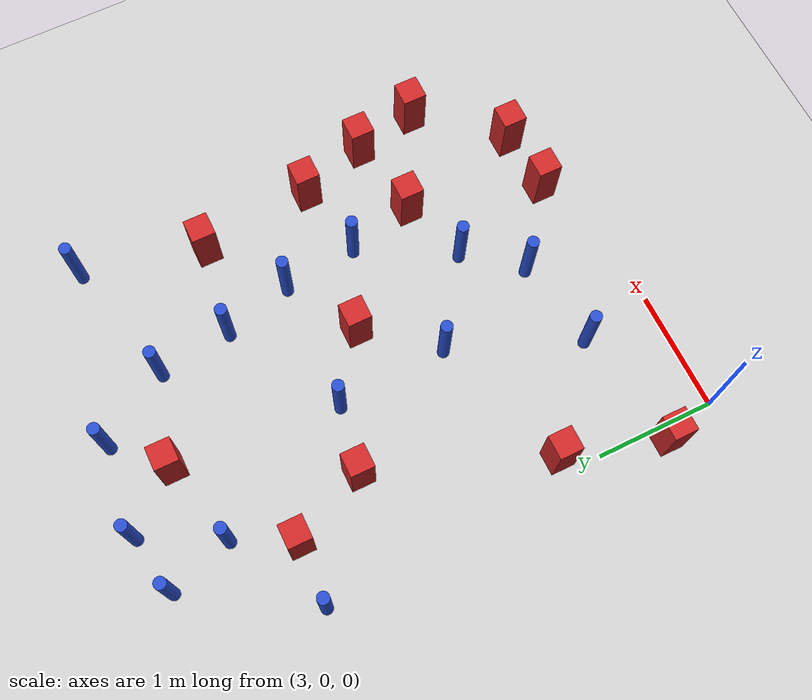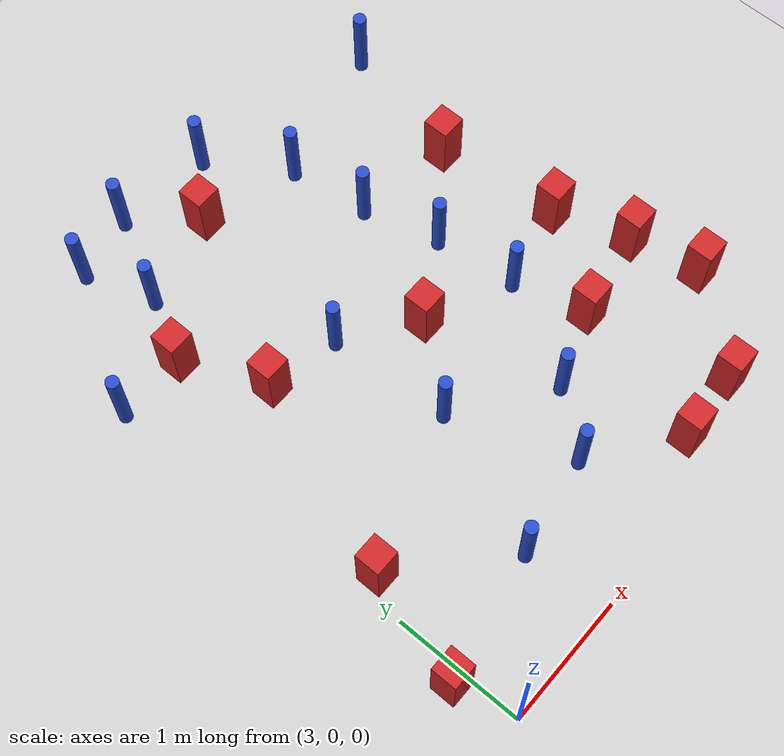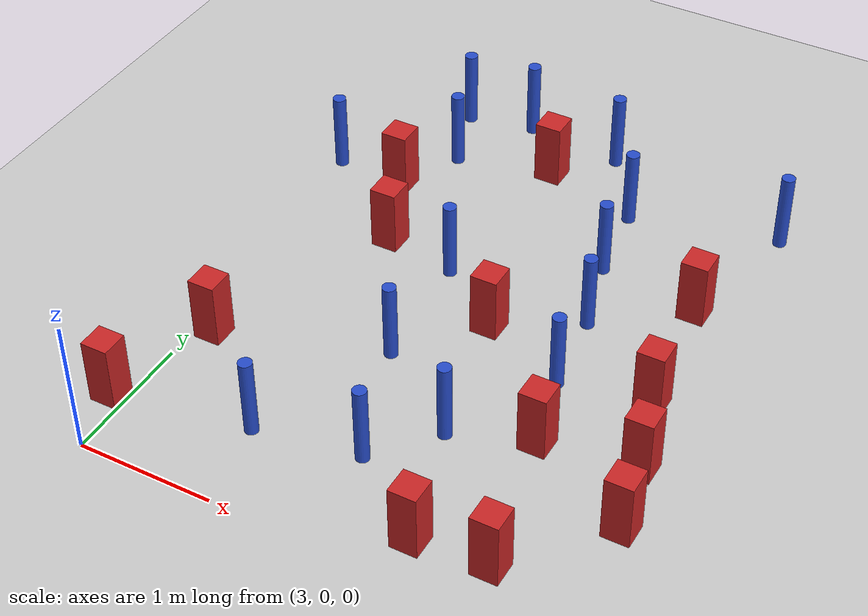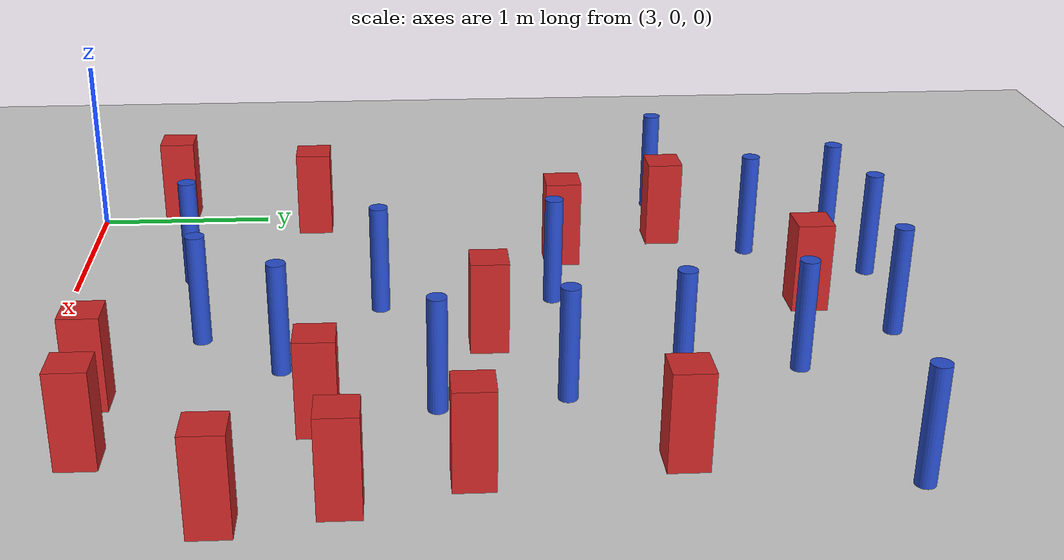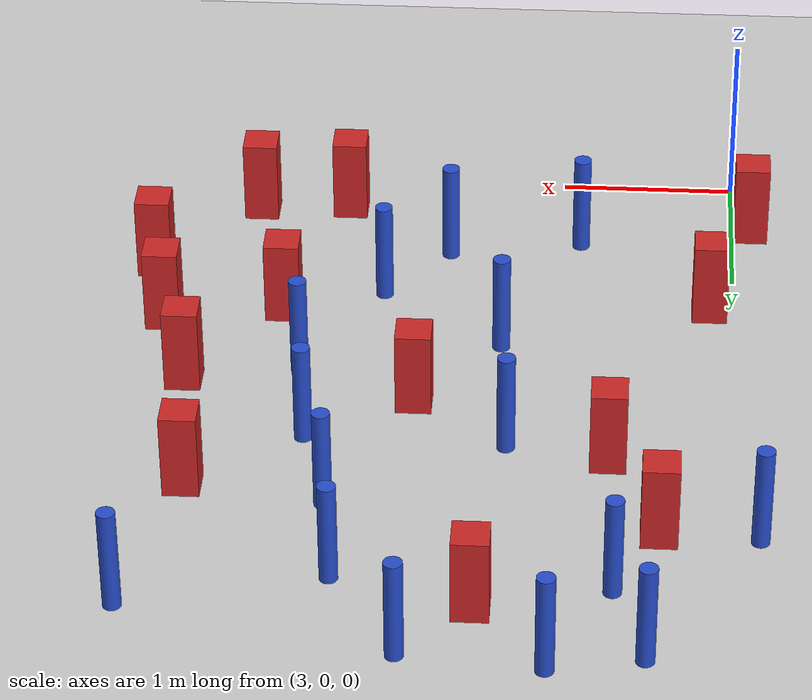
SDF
<sdf version="1.6">
 <world name="default">
  <model name="ground_plane">
   <static>1</static>
   <link name="link">
    <collision name="collision">
     <geometry><plane><normal>0 0 1</normal><size>100 100</size></plane></geometry>
     <surface><friction><ode><mu>100</mu><mu2>50</mu2></ode></friction></surface>
    </collision>
    <visual name="visual">
     <cast_shadows>0</cast_shadows>
     <geometry><plane><normal>0 0 1</normal><size>100 100</size></plane></geometry>
     <material>
      <ambient>1.0 1.0 1.0 1.0</ambient>
      <diffuse>0.8 0.8 0.8 1.0</diffuse>
      <specular>0.01 0.01 0.01 1.000000</specular>
     </material>
    </visual>
   </link>
  </model>
  <model name="square_post_obstacle1">
   <static>true</static>
   <pose>3.69093480242 2.77040469333 1.91545236811e-07 -7.35059704564e-06 1.12565212e-07 2.39332434364e-05</pose>
   <link name="link">
    <pose>0 0 0.25 0 -0 0</pose>
    <inertial>
     <mass>100</mass>
     <inertia>
      <ixx>0.166667</ixx>
      <ixy>0</ixy>
      <ixz>0</ixz>
      <iyy>0.166667</iyy>
      <iyz>0</iyz>
      <izz>0.166667</izz>
     </inertia>
    </inertial>
    <collision name="collision"><geometry><box><size>.2 .2 .5</size></box></geometry></collision>
    <visual name="visual">
     <geometry><box><size>.2 .2 .5</size></box></geometry>
     <material>
      <script><name>Gazebo/Red</name><uri>file://media/materials/scripts/gazebo.material</uri></script>
     </material>
    </visual>
   </link>
  </model>
  <model name="square_post_obstacle6">
   <static>true</static>
   <pose>4.7739497226 2.27891876205 1.91545236811e-07 -7.35059704564e-06 1.12565212e-07 2.39332434364e-05</pose>
   <link name="link">
    <pose>0 0 0.25 0 -0 0</pose>
    <inertial>
     <mass>100</mass>
     <inertia>
      <ixx>0.166667</ixx>
      <ixy>0</ixy>
      <ixz>0</ixz>
      <iyy>0.166667</iyy>
      <iyz>0</iyz>
      <izz>0.166667</izz>
     </inertia>
    </inertial>
    <collision name="collision"><geometry><box><size>.2 .2 .5</size></box></geometry></collision>
    <visual name="visual">
     <geometry><box><size>.2 .2 .5</size></box></geometry>
     <material>
      <script><name>Gazebo/Red</name><uri>file://media/materials/scripts/gazebo.material</uri></script>
     </material>
    </visual>
   </link>
  </model>
  <model name="square_post_obstacle11">
   <static>true</static>
   <pose>5.2790055508 0.315990524747 1.91545236811e-07 -7.35059704564e-06 1.12565212e-07 2.39332434364e-05</pose>
   <link name="link">
    <pose>0 0 0.25 0 -0 0</pose>
    <inertial>
     <mass>100</mass>
     <inertia>
      <ixx>0.166667</ixx>
      <ixy>0</ixy>
      <ixz>0</ixz>
      <iyy>0.166667</iyy>
      <iyz>0</iyz>
      <izz>0.166667</izz>
     </inertia>
    </inertial>
    <collision name="collision"><geometry><box><size>.2 .2 .5</size></box></geometry></collision>
    <visual name="visual">
     <geometry><box><size>.2 .2 .5</size></box></geometry>
     <material>
      <script><name>Gazebo/Red</name><uri>file://media/materials/scripts/gazebo.material</uri></script>
     </material>
    </visual>
   </link>
  </model>
  <model name="pole_obstacle23">
   <static>true</static>
   <pose>2.87624827587 3.41966444536 7.38925637345e-09 -8.47170692798e-08 1.24976764939e-08 -1.74513093025e-07</pose>
   <link name="link">
    <pose>0 0 0.3 0 -0 0</pose>
    <inertial>
     <mass>1</mass>
     <inertia><ixx>0.145833</ixx><ixy>0</ixy><ixz>0</ixz><iyy>0.145833</iyy><iyz>0</iyz><izz>0.125</izz></inertia>
    </inertial>
    <collision name="collision">
     <geometry><cylinder><radius>0.05</radius><length>.6</length></cylinder></geometry>
    </collision>
    <visual name="visual">
     <geometry><cylinder><radius>0.05</radius><length>.6</length></cylinder></geometry>
     <material>
      <script><name>Gazebo/Blue</name><uri>file://media/materials/scripts/gazebo.material</uri></script>
     </material>
    </visual>
   </link>
  </model>
  <model name="pole_obstacle50">
   <static>true</static>
   <pose>5.11585093825 3.8405611347 7.38925637345e-09 -8.47170692798e-08 1.24976764937e-08 -1.74513093023e-07</pose>
   <link name="link">
    <pose>0 0 0.3 0 -0 0</pose>
    <inertial>
     <mass>1</mass>
     <inertia><ixx>0.145833</ixx><ixy>0</ixy><ixz>0</ixz><iyy>0.145833</iyy><iyz>0</iyz><izz>0.125</izz></inertia>
    </inertial>
    <collision name="collision">
     <geometry><cylinder><radius>0.05</radius><length>.6</length></cylinder></geometry>
    </collision>
    <visual name="visual">
     <geometry><cylinder><radius>0.05</radius><length>.6</length></cylinder></geometry>
     <material>
      <script><name>Gazebo/Blue</name><uri>file://media/materials/scripts/gazebo.material</uri></script>
     </material>
    </visual>
   </link>
  </model>
  <model name="square_post_obstacle59">
   <static>true</static>
   <pose>6.36979461459 1.01293578345 1.91545236811e-07 -7.35059704564e-06 1.12565212e-07 2.39332434364e-05</pose>
   <link name="link">
    <pose>0 0 0.25 0 -0 0</pose>
    <inertial>
     <mass>100</mass>
     <inertia>
      <ixx>0.166667</ixx>
      <ixy>0</ixy>
      <ixz>0</ixz>
      <iyy>0.166667</iyy>
      <iyz>0</iyz>
      <izz>0.166667</izz>
     </inertia>
    </inertial>
    <collision name="collision"><geometry><box><size>.2 .2 .5</size></box></geometry></collision>
    <visual name="visual">
     <geometry><box><size>.2 .2 .5</size></box></geometry>
     <material>
      <script><name>Gazebo/Red</name><uri>file://media/materials/scripts/gazebo.material</uri></script>
     </material>
    </visual>
   </link>
  </model>
  <model name="pole_obstacle84">
   <static>true</static>
   <pose>5.43733819902 1.99366622692 7.38925637345e-09 -8.471706928e-08 1.24976765177e-08 -1.74513093012e-07</pose>
   <link name="link">
    <pose>0 0 0.3 0 -0 0</pose>
    <inertial>
     <mass>1</mass>
     <inertia><ixx>0.145833</ixx><ixy>0</ixy><ixz>0</ixz><iyy>0.145833</iyy><iyz>0</iyz><izz>0.125</izz></inertia>
    </inertial>
    <collision name="collision">
     <geometry><cylinder><radius>0.05</radius><length>.6</length></cylinder></geometry>
    </collision>
    <visual name="visual">
     <geometry><cylinder><radius>0.05</radius><length>.6</length></cylinder></geometry>
     <material>
      <script><name>Gazebo/Blue</name><uri>file://media/materials/scripts/gazebo.material</uri></script>
     </material>
    </visual>
   </link>
  </model>
  <model name="pole_obstacle85">
   <static>true</static>
   <pose>4.65288766754 0.781070810231 7.38925637345e-09 -8.47170692799e-08 1.24976765038e-08 -1.74513093018e-07</pose>
   <link name="link">
    <pose>0 0 0.3 0 -0 0</pose>
    <inertial>
     <mass>1</mass>
     <inertia><ixx>0.145833</ixx><ixy>0</ixy><ixz>0</ixz><iyy>0.145833</iyy><iyz>0</iyz><izz>0.125</izz></inertia>
    </inertial>
    <collision name="collision">
     <geometry><cylinder><radius>0.05</radius><length>.6</length></cylinder></geometry>
    </collision>
    <visual name="visual">
     <geometry><cylinder><radius>0.05</radius><length>.6</length></cylinder></geometry>
     <material>
      <script><name>Gazebo/Blue</name><uri>file://media/materials/scripts/gazebo.material</uri></script>
     </material>
    </visual>
   </link>
  </model>
  <model name="pole_obstacle93">
   <static>true</static>
   <pose>5.19981372832 3.21830600685 7.38925637345e-09 -8.47170692798e-08 1.24976764937e-08 -1.74513093023e-07</pose>
   <link name="link">
    <pose>0 0 0.3 0 -0 0</pose>
    <inertial>
     <mass>1</mass>
     <inertia><ixx>0.145833</ixx><ixy>0</ixy><ixz>0</ixz><iyy>0.145833</iyy><iyz>0</iyz><izz>0.125</izz></inertia>
    </inertial>
    <collision name="collision">
     <geometry><cylinder><radius>0.05</radius><length>.6</length></cylinder></geometry>
    </collision>
    <visual name="visual">
     <geometry><cylinder><radius>0.05</radius><length>.6</length></cylinder></geometry>
     <material>
      <script><name>Gazebo/Blue</name><uri>file://media/materials/scripts/gazebo.material</uri></script>
     </material>
    </visual>
   </link>
  </model>
  <model name="pole_obstacle98">
   <static>true</static>
   <pose>4.73401317206 4.43635557721 7.38925637345e-09 -8.47170692796e-08 1.24976764786e-08 -1.74513093032e-07</pose>
   <link name="link">
    <pose>0 0 0.3 0 -0 0</pose>
    <inertial>
     <mass>1</mass>
     <inertia><ixx>0.145833</ixx><ixy>0</ixy><ixz>0</ixz><iyy>0.145833</iyy><iyz>0</iyz><izz>0.125</izz></inertia>
    </inertial>
    <collision name="collision">
     <geometry><cylinder><radius>0.05</radius><length>.6</length></cylinder></geometry>
    </collision>
    <visual name="visual">
     <geometry><cylinder><radius>0.05</radius><length>.6</length></cylinder></geometry>
     <material>
      <script><name>Gazebo/Blue</name><uri>file://media/materials/scripts/gazebo.material</uri></script>
     </material>
    </visual>
   </link>
  </model>
  <model name="pole_obstacle102">
   <static>true</static>
   <pose>3.6465529342 3.87782521545 7.38925637345e-09 -8.47170692798e-08 1.24976764939e-08 -1.74513093025e-07</pose>
   <link name="link">
    <pose>0 0 0.3 0 -0 0</pose>
    <inertial>
     <mass>1</mass>
     <inertia><ixx>0.145833</ixx><ixy>0</ixy><ixz>0</ixz><iyy>0.145833</iyy><iyz>0</iyz><izz>0.125</izz></inertia>
    </inertial>
    <collision name="collision">
     <geometry><cylinder><radius>0.05</radius><length>.6</length></cylinder></geometry>
    </collision>
    <visual name="visual">
     <geometry><cylinder><radius>0.05</radius><length>.6</length></cylinder></geometry>
     <material>
      <script><name>Gazebo/Blue</name><uri>file://media/materials/scripts/gazebo.material</uri></script>
     </material>
    </visual>
   </link>
  </model>
  <model name="pole_obstacle106">
   <static>true</static>
   <pose>3.97434509535 4.51274915058 7.38925637345e-09 -8.47170692798e-08 1.24976764915e-08 -1.74513093026e-07</pose>
   <link name="link">
    <pose>0 0 0.3 0 -0 0</pose>
    <inertial>
     <mass>1</mass>
     <inertia><ixx>0.145833</ixx><ixy>0</ixy><ixz>0</ixz><iyy>0.145833</iyy><iyz>0</iyz><izz>0.125</izz></inertia>
    </inertial>
    <collision name="collision">
     <geometry><cylinder><radius>0.05</radius><length>.6</length></cylinder></geometry>
    </collision>
    <visual name="visual">
     <geometry><cylinder><radius>0.05</radius><length>.6</length></cylinder></geometry>
     <material>
      <script><name>Gazebo/Blue</name><uri>file://media/materials/scripts/gazebo.material</uri></script>
     </material>
    </visual>
   </link>
  </model>
  <model name="square_post_obstacle94">
   <static>true</static>
   <pose>5.80845947492 0.359265321102 1.91545236811e-07 -7.35059704564e-06 1.12565212e-07 2.39332434364e-05</pose>
   <link name="link">
    <pose>0 0 0.25 0 -0 0</pose>
    <inertial>
     <mass>100</mass>
     <inertia>
      <ixx>0.166667</ixx>
      <ixy>0</ixy>
      <ixz>0</ixz>
      <iyy>0.166667</iyy>
      <iyz>0</iyz>
      <izz>0.166667</izz>
     </inertia>
    </inertial>
    <collision name="collision"><geometry><box><size>.2 .2 .5</size></box></geometry></collision>
    <visual name="visual">
     <geometry><box><size>.2 .2 .5</size></box></geometry>
     <material>
      <script><name>Gazebo/Red</name><uri>file://media/materials/scripts/gazebo.material</uri></script>
     </material>
    </visual>
   </link>
  </model>
  <model name="pole_obstacle107">
   <static>true</static>
   <pose>4.31555954134 1.71514344017 7.38925637345e-09 -8.471706928e-08 1.24976765134e-08 -1.74513093015e-07</pose>
   <link name="link">
    <pose>0 0 0.3 0 -0 0</pose>
    <inertial>
     <mass>1</mass>
     <inertia><ixx>0.145833</ixx><ixy>0</ixy><ixz>0</ixz><iyy>0.145833</iyy><iyz>0</iyz><izz>0.125</izz></inertia>
    </inertial>
    <collision name="collision">
     <geometry><cylinder><radius>0.05</radius><length>.6</length></cylinder></geometry>
    </collision>
    <visual name="visual">
     <geometry><cylinder><radius>0.05</radius><length>.6</length></cylinder></geometry>
     <material>
      <script><name>Gazebo/Blue</name><uri>file://media/materials/scripts/gazebo.material</uri></script>
     </material>
    </visual>
   </link>
  </model>
  <model name="pole_obstacle108">
   <static>true</static>
   <pose>3.88953869715 0.647155087251 7.38925637345e-09 -8.471706928e-08 1.24976765177e-08 -1.74513093012e-07</pose>
   <link name="link">
    <pose>0 0 0.3 0 -0 0</pose>
    <inertial>
     <mass>1</mass>
     <inertia><ixx>0.145833</ixx><ixy>0</ixy><ixz>0</ixz><iyy>0.145833</iyy><iyz>0</iyz><izz>0.125</izz></inertia>
    </inertial>
    <collision name="collision">
     <geometry><cylinder><radius>0.05</radius><length>.6</length></cylinder></geometry>
    </collision>
    <visual name="visual">
     <geometry><cylinder><radius>0.05</radius><length>.6</length></cylinder></geometry>
     <material>
      <script><name>Gazebo/Blue</name><uri>file://media/materials/scripts/gazebo.material</uri></script>
     </material>
    </visual>
   </link>
  </model>
  <model name="square_post_obstacle104">
   <static>true</static>
   <pose>2.89043169182 0.468016954105 1.91545236811e-07 -7.35059704564e-06 1.12565212e-07 2.39332434364e-05</pose>
   <link name="link">
    <pose>0 0 0.25 0 -0 0</pose>
    <inertial>
     <mass>100</mass>
     <inertia>
      <ixx>0.166667</ixx>
      <ixy>0</ixy>
      <ixz>0</ixz>
      <iyy>0.166667</iyy>
      <iyz>0</iyz>
      <izz>0.166667</izz>
     </inertia>
    </inertial>
    <collision name="collision"><geometry><box><size>.2 .2 .5</size></box></geometry></collision>
    <visual name="visual">
     <geometry><box><size>.2 .2 .5</size></box></geometry>
     <material>
      <script><name>Gazebo/Red</name><uri>file://media/materials/scripts/gazebo.material</uri></script>
     </material>
    </visual>
   </link>
  </model>
  <model name="pole_obstacle123">
   <static>true</static>
   <pose>6.20462049952 4.11837966132 7.38925637345e-09 -8.47170692796e-08 1.24976764786e-08 -1.74513093032e-07</pose>
   <link name="link">
    <pose>0 0 0.3 0 -0 0</pose>
    <inertial>
     <mass>1</mass>
     <inertia><ixx>0.145833</ixx><ixy>0</ixy><ixz>0</ixz><iyy>0.145833</iyy><iyz>0</iyz><izz>0.125</izz></inertia>
    </inertial>
    <collision name="collision">
     <geometry><cylinder><radius>0.05</radius><length>.6</length></cylinder></geometry>
    </collision>
    <visual name="visual">
     <geometry><cylinder><radius>0.05</radius><length>.6</length></cylinder></geometry>
     <material>
      <script><name>Gazebo/Blue</name><uri>file://media/materials/scripts/gazebo.material</uri></script>
     </material>
    </visual>
   </link>
  </model>
  <model name="pole_obstacle138">
   <static>true</static>
   <pose>3.47187030067 4.41268664835 7.38925637345e-09 -8.47170692798e-08 1.24976765033e-08 -1.74513093019e-07</pose>
   <link name="link">
    <pose>0 0 0.3 0 -0 0</pose>
    <inertial>
     <mass>1</mass>
     <inertia><ixx>0.145833</ixx><ixy>0</ixy><ixz>0</ixz><iyy>0.145833</iyy><iyz>0</iyz><izz>0.125</izz></inertia>
    </inertial>
    <collision name="collision">
     <geometry><cylinder><radius>0.05</radius><length>.6</length></cylinder></geometry>
    </collision>
    <visual name="visual">
     <geometry><cylinder><radius>0.05</radius><length>.6</length></cylinder></geometry>
     <material>
      <script><name>Gazebo/Blue</name><uri>file://media/materials/scripts/gazebo.material</uri></script>
     </material>
    </visual>
   </link>
  </model>
  <model name="square_post_obstacle121">
   <static>true</static>
   <pose>6.07418528238 2.13106138288 1.91545236811e-07 -7.35059704564e-06 1.12565212e-07 2.39332434364e-05</pose>
   <link name="link">
    <pose>0 0 0.25 0 -0 0</pose>
    <inertial>
     <mass>100</mass>
     <inertia>
      <ixx>0.166667</ixx>
      <ixy>0</ixy>
      <ixz>0</ixz>
      <iyy>0.166667</iyy>
      <iyz>0</iyz>
      <izz>0.166667</izz>
     </inertia>
    </inertial>
    <collision name="collision"><geometry><box><size>.2 .2 .5</size></box></geometry></collision>
    <visual name="visual">
     <geometry><box><size>.2 .2 .5</size></box></geometry>
     <material>
      <script><name>Gazebo/Red</name><uri>file://media/materials/scripts/gazebo.material</uri></script>
     </material>
    </visual>
   </link>
  </model>
  <model name="square_post_obstacle138">
   <static>true</static>
   <pose>3.13493858302 1.31204606265 1.91545236811e-07 -7.35059704564e-06 1.12565212e-07 2.39332434364e-05</pose>
   <link name="link">
    <pose>0 0 0.25 0 -0 0</pose>
    <inertial>
     <mass>100</mass>
     <inertia>
      <ixx>0.166667</ixx>
      <ixy>0</ixy>
      <ixz>0</ixz>
      <iyy>0.166667</iyy>
      <iyz>0</iyz>
      <izz>0.166667</izz>
     </inertia>
    </inertial>
    <collision name="collision"><geometry><box><size>.2 .2 .5</size></box></geometry></collision>
    <visual name="visual">
     <geometry><box><size>.2 .2 .5</size></box></geometry>
     <material>
      <script><name>Gazebo/Red</name><uri>file://media/materials/scripts/gazebo.material</uri></script>
     </material>
    </visual>
   </link>
  </model>
  <model name="square_post_obstacle150">
   <static>true</static>
   <pose>4.36897075444 4.05901729462 1.91545236811e-07 -7.35059704564e-06 1.12565212e-07 2.39332434364e-05</pose>
   <link name="link">
    <pose>0 0 0.25 0 -0 0</pose>
    <inertial>
     <mass>100</mass>
     <inertia>
      <ixx>0.166667</ixx>
      <ixy>0</ixy>
      <ixz>0</ixz>
      <iyy>0.166667</iyy>
      <iyz>0</iyz>
      <izz>0.166667</izz>
     </inertia>
    </inertial>
    <collision name="collision"><geometry><box><size>.2 .2 .5</size></box></geometry></collision>
    <visual name="visual">
     <geometry><box><size>.2 .2 .5</size></box></geometry>
     <material>
      <script><name>Gazebo/Red</name><uri>file://media/materials/scripts/gazebo.material</uri></script>
     </material>
    </visual>
   </link>
  </model>
  <model name="square_post_obstacle174">
   <static>true</static>
   <pose>5.5800804339 1.42703444955 1.91545236811e-07 -7.35059704564e-06 1.12565212e-07 2.39332434364e-05</pose>
   <link name="link">
    <pose>0 0 0.25 0 -0 0</pose>
    <inertial>
     <mass>100</mass>
     <inertia>
      <ixx>0.166667</ixx>
      <ixy>0</ixy>
      <ixz>0</ixz>
      <iyy>0.166667</iyy>
      <iyz>0</iyz>
      <izz>0.166667</izz>
     </inertia>
    </inertial>
    <collision name="collision"><geometry><box><size>.2 .2 .5</size></box></geometry></collision>
    <visual name="visual">
     <geometry><box><size>.2 .2 .5</size></box></geometry>
     <material>
      <script><name>Gazebo/Red</name><uri>file://media/materials/scripts/gazebo.material</uri></script>
     </material>
    </visual>
   </link>
  </model>
  <model name="square_post_obstacle177">
   <static>true</static>
   <pose>6.25787281456 1.54996833769 1.91545236811e-07 -7.35059704564e-06 1.12565212e-07 2.39332434364e-05</pose>
   <link name="link">
    <pose>0 0 0.25 0 -0 0</pose>
    <inertial>
     <mass>100</mass>
     <inertia>
      <ixx>0.166667</ixx>
      <ixy>0</ixy>
      <ixz>0</ixz>
      <iyy>0.166667</iyy>
      <iyz>0</iyz>
      <izz>0.166667</izz>
     </inertia>
    </inertial>
    <collision name="collision"><geometry><box><size>.2 .2 .5</size></box></geometry></collision>
    <visual name="visual">
     <geometry><box><size>.2 .2 .5</size></box></geometry>
     <material>
      <script><name>Gazebo/Red</name><uri>file://media/materials/scripts/gazebo.material</uri></script>
     </material>
    </visual>
   </link>
  </model>
  <model name="square_post_obstacle178">
   <static>true</static>
   <pose>3.40993980374 3.40553398249 1.91545236811e-07 -7.35059704564e-06 1.12565212e-07 2.39332434364e-05</pose>
   <link name="link">
    <pose>0 0 0.25 0 -0 0</pose>
    <inertial>
     <mass>100</mass>
     <inertia>
      <ixx>0.166667</ixx>
      <ixy>0</ixy>
      <ixz>0</ixz>
      <iyy>0.166667</iyy>
      <iyz>0</iyz>
      <izz>0.166667</izz>
     </inertia>
    </inertial>
    <collision name="collision"><geometry><box><size>.2 .2 .5</size></box></geometry></collision>
    <visual name="visual">
     <geometry><box><size>.2 .2 .5</size></box></geometry>
     <material>
      <script><name>Gazebo/Red</name><uri>file://media/materials/scripts/gazebo.material</uri></script>
     </material>
    </visual>
   </link>
  </model>
  <model name="square_post_obstacle187">
   <static>true</static>
   <pose>5.96561888352 3.09497761402 1.91545236811e-07 -7.35059704564e-06 1.12565212e-07 2.39332434364e-05</pose>
   <link name="link">
    <pose>0 0 0.25 0 -0 0</pose>
    <inertial>
     <mass>100</mass>
     <inertia>
      <ixx>0.166667</ixx>
      <ixy>0</ixy>
      <ixz>0</ixz>
      <iyy>0.166667</iyy>
      <iyz>0</iyz>
      <izz>0.166667</izz>
     </inertia>
    </inertial>
    <collision name="collision"><geometry><box><size>.2 .2 .5</size></box></geometry></collision>
    <visual name="visual">
     <geometry><box><size>.2 .2 .5</size></box></geometry>
     <material>
      <script><name>Gazebo/Red</name><uri>file://media/materials/scripts/gazebo.material</uri></script>
     </material>
    </visual>
   </link>
  </model>
  <model name="pole_obstacle196">
   <static>true</static>
   <pose>5.01350519358 1.21716724321 7.38925637345e-09 -8.471706928e-08 1.24976765134e-08 -1.74513093015e-07</pose>
   <link name="link">
    <pose>0 0 0.3 0 -0 0</pose>
    <inertial>
     <mass>1</mass>
     <inertia><ixx>0.145833</ixx><ixy>0</ixy><ixz>0</ixz><iyy>0.145833</iyy><iyz>0</iyz><izz>0.125</izz></inertia>
    </inertial>
    <collision name="collision">
     <geometry><cylinder><radius>0.05</radius><length>.6</length></cylinder></geometry>
    </collision>
    <visual name="visual">
     <geometry><cylinder><radius>0.05</radius><length>.6</length></cylinder></geometry>
     <material>
      <script><name>Gazebo/Blue</name><uri>file://media/materials/scripts/gazebo.material</uri></script>
     </material>
    </visual>
   </link>
  </model>
  <model name="pole_obstacle199">
   <static>true</static>
   <pose>5.35889315043 2.63113704955 7.38925637345e-09 -8.47170692798e-08 1.24976764937e-08 -1.74513093023e-07</pose>
   <link name="link">
    <pose>0 0 0.3 0 -0 0</pose>
    <inertial>
     <mass>1</mass>
     <inertia><ixx>0.145833</ixx><ixy>0</ixy><ixz>0</ixz><iyy>0.145833</iyy><iyz>0</iyz><izz>0.125</izz></inertia>
    </inertial>
    <collision name="collision">
     <geometry><cylinder><radius>0.05</radius><length>.6</length></cylinder></geometry>
    </collision>
    <visual name="visual">
     <geometry><cylinder><radius>0.05</radius><length>.6</length></cylinder></geometry>
     <material>
      <script><name>Gazebo/Blue</name><uri>file://media/materials/scripts/gazebo.material</uri></script>
     </material>
    </visual>
   </link>
  </model>
  <model name="pole_obstacle201">
   <static>true</static>
   <pose>4.24887799773 2.66493012188 7.38925637345e-09 -8.47170692798e-08 1.24976764937e-08 -1.74513093023e-07</pose>
   <link name="link">
    <pose>0 0 0.3 0 -0 0</pose>
    <inertial>
     <mass>1</mass>
     <inertia><ixx>0.145833</ixx><ixy>0</ixy><ixz>0</ixz><iyy>0.145833</iyy><iyz>0</iyz><izz>0.125</izz></inertia>
    </inertial>
    <collision name="collision">
     <geometry><cylinder><radius>0.05</radius><length>.6</length></cylinder></geometry>
    </collision>
    <visual name="visual">
     <geometry><cylinder><radius>0.05</radius><length>.6</length></cylinder></geometry>
     <material>
      <script><name>Gazebo/Blue</name><uri>file://media/materials/scripts/gazebo.material</uri></script>
     </material>
    </visual>
   </link>
  </model>
 </world>
</sdf>
